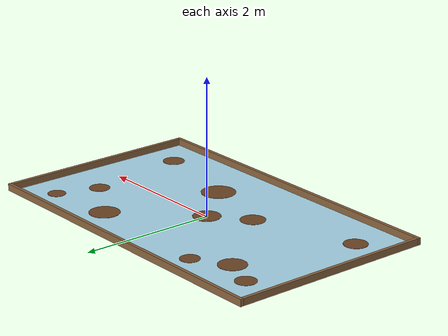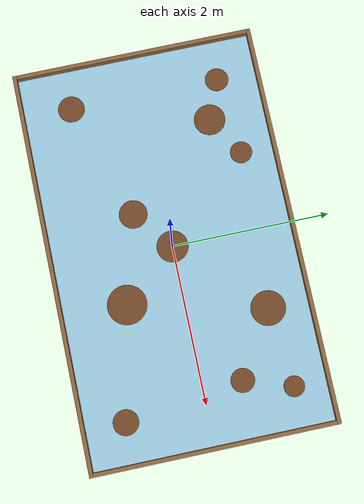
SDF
<?xml version="1.0" ?>
<sdf version="1.9">
  <world name="glass_large">

    <gravity>0 0 0</gravity>

    <physics name="1ms" type="ignored">
      <max_step_size>0.001</max_step_size>
      <real_time_factor>1.0</real_time_factor>
    </physics>

    <plugin filename="ignition-gazebo-physics-system"
            name="ignition::gazebo::systems::Physics"/>
    <plugin filename="ignition-gazebo-user-commands-system"
            name="ignition::gazebo::systems::UserCommands"/>
    <plugin filename="ignition-gazebo-scene-broadcaster-system"
            name="ignition::gazebo::systems::SceneBroadcaster"/>
    <plugin filename="ignition-gazebo-sensors-system"
            name="ignition::gazebo::systems::Sensors">
      <render_engine>ogre2</render_engine>
    </plugin>

    <scene>
      <ambient>0.5 0.5 0.6 1</ambient>
      <background>0.85 0.90 0.95 1</background>
      <grid>false</grid>
    </scene>

    <light type="directional" name="sun">
      <cast_shadows>true</cast_shadows>
      <pose>0 0 5 0 0 0</pose>
      <diffuse>0.9 0.9 0.9 1</diffuse>
      <specular>0.2 0.2 0.2 1</specular>
      <direction>-0.3 0.3 -1.0</direction>
    </light>

    <model name="glass_surface">
      <static>true</static>
      <pose>0 0 0 0 0 0</pose>
      <link name="surface_link">
        <visual name="surface_visual">
          <geometry>
            <box><size>5.0 3.0 0.01</size></box>
          </geometry>
          <material>
            <ambient>0.15 0.35 0.55 0.45</ambient>
            <diffuse>0.25 0.55 0.85 0.45</diffuse>
            <specular>0.6 0.7 0.9 1</specular>
            <emissive>0.05 0.10 0.15 1</emissive>
          </material>
        </visual>
        <collision name="surface_collision">
          <geometry>
            <box><size>5.0 3.0 0.01</size></box>
          </geometry>
        </collision>
      </link>
    </model>

    <!-- ============================================================
         Window frame (4 thin walls) — identical to glass_basic.
         ============================================================ -->
    <model name="frame_bottom">
      <static>true</static>
      <pose>0 -1.525 0.055 0 0 0</pose>
      <link name="link">
        <visual name="v">
          <geometry><box><size>5.10 0.05 0.10</size></box></geometry>
          <material>
            <ambient>0.35 0.25 0.18 1</ambient>
            <diffuse>0.55 0.40 0.25 1</diffuse>
          </material>
        </visual>
        <collision name="c">
          <geometry><box><size>5.10 0.05 0.10</size></box></geometry>
        </collision>
      </link>
    </model>

    <model name="frame_top">
      <static>true</static>
      <pose>0 1.525 0.055 0 0 0</pose>
      <link name="link">
        <visual name="v">
          <geometry><box><size>5.10 0.05 0.10</size></box></geometry>
          <material>
            <ambient>0.35 0.25 0.18 1</ambient>
            <diffuse>0.55 0.40 0.25 1</diffuse>
          </material>
        </visual>
        <collision name="c">
          <geometry><box><size>5.10 0.05 0.10</size></box></geometry>
        </collision>
      </link>
    </model>

    <model name="frame_left">
      <static>true</static>
      <pose>-2.525 0 0.055 0 0 0</pose>
      <link name="link">
        <visual name="v">
          <geometry><box><size>0.05 3.00 0.10</size></box></geometry>
          <material>
            <ambient>0.35 0.25 0.18 1</ambient>
            <diffuse>0.55 0.40 0.25 1</diffuse>
          </material>
        </visual>
        <collision name="c">
          <geometry><box><size>0.05 3.00 0.10</size></box></geometry>
        </collision>
      </link>
    </model>

    <model name="frame_right">
      <static>true</static>
      <pose>2.525 0 0.055 0 0 0</pose>
      <link name="link">
        <visual name="v">
          <geometry><box><size>0.05 3.00 0.10</size></box></geometry>
          <material>
            <ambient>0.35 0.25 0.18 1</ambient>
            <diffuse>0.55 0.40 0.25 1</diffuse>
          </material>
        </visual>
        <collision name="c">
          <geometry><box><size>0.05 3.00 0.10</size></box></geometry>
        </collision>
      </link>
    </model>

    <model name="dirt_01">
      <static>true</static><pose>-1.5 0.8 0.011 0 0 0</pose>
      <link name="link"><visual name="v">
        <geometry><cylinder><radius>0.20</radius><length>0.005</length></cylinder></geometry>
        <material><ambient>0.30 0.18 0.10 1</ambient><diffuse>0.45 0.28 0.15 1</diffuse></material>
      </visual></link>
    </model>

    <model name="dirt_02">
      <static>true</static><pose>0.6 -0.7 0.011 0 0 0</pose>
      <link name="link"><visual name="v">
        <geometry><cylinder><radius>0.25</radius><length>0.005</length></cylinder></geometry>
        <material><ambient>0.30 0.18 0.10 1</ambient><diffuse>0.45 0.28 0.15 1</diffuse></material>
      </visual></link>
    </model>

    <model name="dirt_03">
      <static>true</static><pose>1.8 0.5 0.011 0 0 0</pose>
      <link name="link"><visual name="v">
        <geometry><cylinder><radius>0.15</radius><length>0.005</length></cylinder></geometry>
        <material><ambient>0.30 0.18 0.10 1</ambient><diffuse>0.45 0.28 0.15 1</diffuse></material>
      </visual></link>
    </model>

    <model name="dirt_04">
      <static>true</static><pose>-0.5 -0.4 0.011 0 0 0</pose>
      <link name="link"><visual name="v">
        <geometry><cylinder><radius>0.18</radius><length>0.005</length></cylinder></geometry>
        <material><ambient>0.30 0.18 0.10 1</ambient><diffuse>0.45 0.28 0.15 1</diffuse></material>
      </visual></link>
    </model>

    <model name="dirt_05">
      <static>true</static><pose>1.0 1.0 0.011 0 0 0</pose>
      <link name="link"><visual name="v">
        <geometry><cylinder><radius>0.22</radius><length>0.005</length></cylinder></geometry>
        <material><ambient>0.30 0.18 0.10 1</ambient><diffuse>0.45 0.28 0.15 1</diffuse></material>
      </visual></link>
    </model>

    <model name="dirt_06">
      <static>true</static><pose>-2.0 -0.9 0.011 0 0 0</pose>
      <link name="link"><visual name="v">
        <geometry><cylinder><radius>0.17</radius><length>0.005</length></cylinder></geometry>
        <material><ambient>0.30 0.18 0.10 1</ambient><diffuse>0.45 0.28 0.15 1</diffuse></material>
      </visual></link>
    </model>

    <model name="dirt_07">
      <static>true</static><pose>2.0 -1.0 0.011 0 0 0</pose>
      <link name="link"><visual name="v">
        <geometry><cylinder><radius>0.16</radius><length>0.005</length></cylinder></geometry>
        <material><ambient>0.30 0.18 0.10 1</ambient><diffuse>0.45 0.28 0.15 1</diffuse></material>
      </visual></link>
    </model>

    <model name="dirt_08">
      <static>true</static><pose>-1.0 1.1 0.011 0 0 0</pose>
      <link name="link"><visual name="v">
        <geometry><cylinder><radius>0.14</radius><length>0.005</length></cylinder></geometry>
        <material><ambient>0.30 0.18 0.10 1</ambient><diffuse>0.45 0.28 0.15 1</diffuse></material>
      </visual></link>
    </model>

    <model name="dirt_09">
      <static>true</static><pose>0.0 0.0 0.011 0 0 0</pose>
      <link name="link"><visual name="v">
        <geometry><cylinder><radius>0.20</radius><length>0.005</length></cylinder></geometry>
        <material><ambient>0.30 0.18 0.10 1</ambient><diffuse>0.45 0.28 0.15 1</diffuse></material>
      </visual></link>
    </model>

    <model name="dirt_10">
      <static>true</static><pose>2.0 1.1 0.011 0 0 0</pose>
      <link name="link"><visual name="v">
        <geometry><cylinder><radius>0.13</radius><length>0.005</length></cylinder></geometry>
        <material><ambient>0.30 0.18 0.10 1</ambient><diffuse>0.45 0.28 0.15 1</diffuse></material>
      </visual></link>
    </model>

    <model name="dirt_11">
      <static>true</static><pose>-2.0 1.0 0.011 0 0 0</pose>
      <link name="link"><visual name="v">
        <geometry><cylinder><radius>0.15</radius><length>0.005</length></cylinder></geometry>
        <material><ambient>0.30 0.18 0.10 1</ambient><diffuse>0.45 0.28 0.15 1</diffuse></material>
      </visual></link>
    </model>

  </world>
</sdf>
